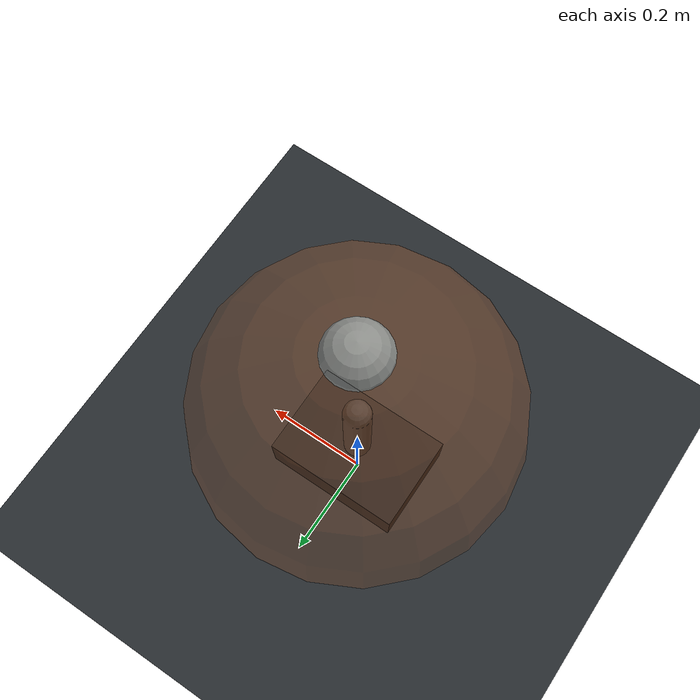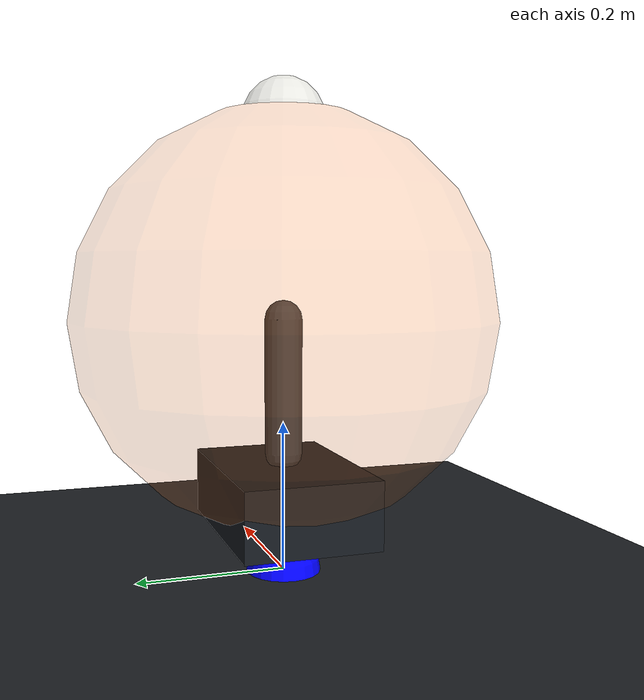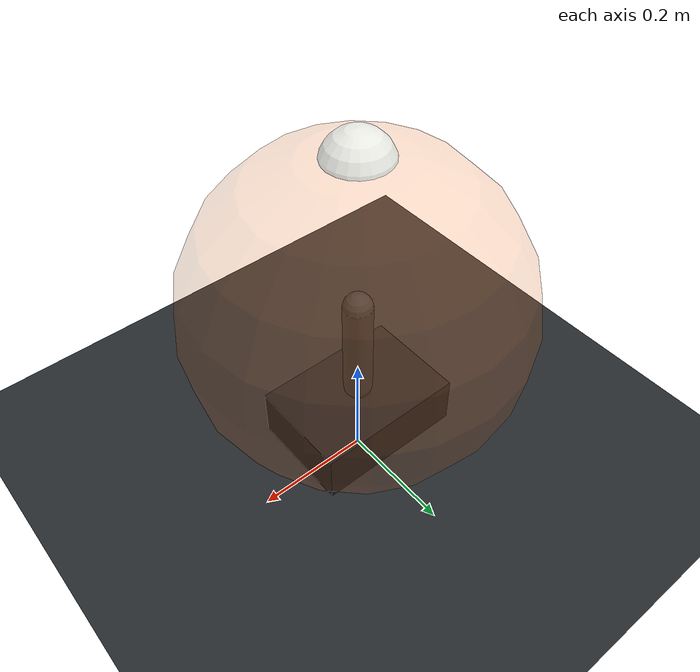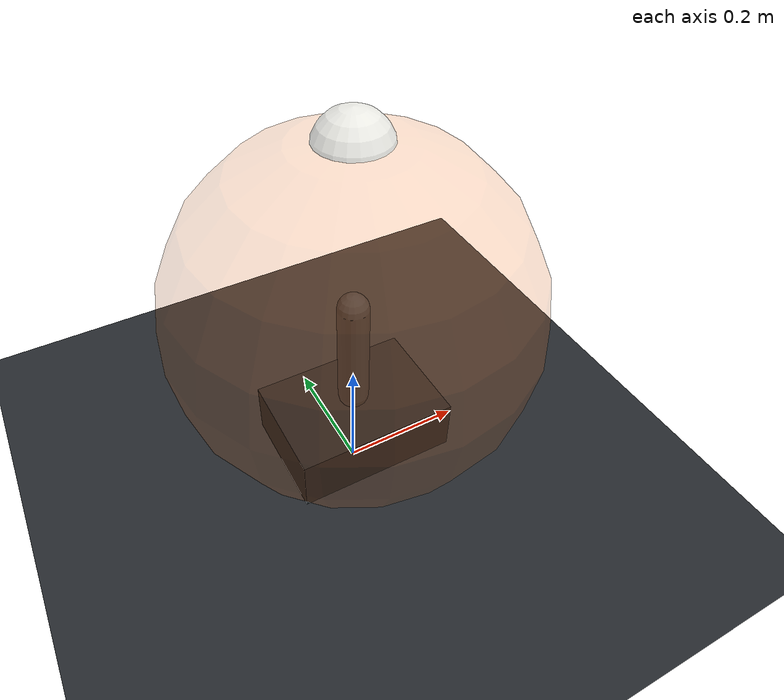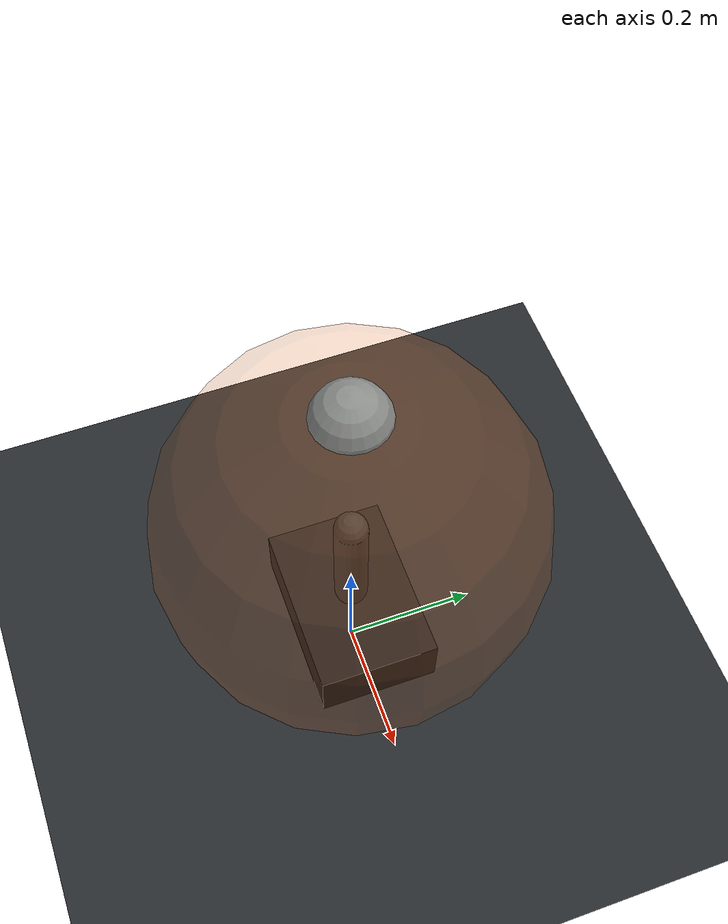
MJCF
<mujoco model="bb8_balance_abstract">
  <compiler angle="radian"/>
  <option timestep="0.002" integrator="RK4" gravity="0 0 -9.81"/>

  <default>
    <joint damping="0.02" armature="0.002"/>
    <geom friction="1.0 0.005 0.0001"/>
  </default>

  <asset>
    <texture name="grid" type="2d" builtin="checker" width="256" height="256"
             rgb1="0.12 0.13 0.14" rgb2="0.18 0.20 0.22"/>
    <material name="grid" texture="grid" texrepeat="6 6" reflectance="0.05"/>
  </asset>

  <worldbody>
    <light name="top" pos="0 0 3"/>
    <geom name="floor" type="plane" pos="0 0 0" size="8 8 0.02" material="grid"/>

    <body name = "center" pos = "0 0 0">
      <geom name = "center_dot" type = "sphere" size = "0.05" mass = "0"
            rgba = "0 0 1 1" conaffinity="2"/>
    </body>

    <body name="shell" pos="0 0 0.34">
      <joint name="shell_x" type="slide" axis="1 0 0" damping="0.35"/>
      <joint name="shell_y" type="slide" axis="0 1 0" damping="0.35"/>
      <geom name="shell_visual" type="sphere" size="0.28" mass="1.1"
            rgba="0.95 0.45 0.12 0.22" contype="0" conaffinity="0"/>

      <body name="pitch_frame" pos="0 0 0">
        <inertial pos="0 0 0" mass="0.001" diaginertia="0.000001 0.000001 0.000001"/>
        <joint name="pitch" type="hinge" axis="0 1 0" damping="0.035"
               limited="true" range="-1.2 1.2"/>
        <body name="roll_frame" pos="0 0 0">
          <inertial pos="0 0 0" mass="0.001" diaginertia="0.000001 0.000001 0.000001"/>
          <joint name="roll" type="hinge" axis="1 0 0" damping="0.035"
                 limited="true" range="-1.2 1.2"/>
          <geom name="chassis_stem" type="capsule" fromto="0 0 0 0 0 -0.18"
                size="0.025" mass="0.25" rgba="0.18 0.2 0.22 1"
                contype="0" conaffinity="0"/>
          <body name="chassis_mass" pos="0 0 -0.24">
            <geom name="battery_block" type="box" size="0.13 0.09 0.045"
                  mass="3.2" rgba="0.08 0.1 0.12 1"
                  contype="0" conaffinity="0"/>
          </body>
          <body name="head_disturbance_mass" pos="0 0 0.26">
            <geom name="head_disturbance" type="sphere" size="0.055"
                  mass="0.25" rgba="0.9 0.9 0.86 0.55" contype="0" conaffinity="0"/>
          </body>
        </body>
      </body>
    </body>
  </worldbody>

  <actuator>
    <motor name="x_force" joint="shell_x" gear="1" ctrllimited="true" ctrlrange="-600 600"/>
    <motor name="y_force" joint="shell_y" gear="1" ctrllimited="true" ctrlrange="-600 600"/>
  </actuator>

  <sensor>
    <jointpos name="roll_pos" joint="roll"/>
    <jointpos name="pitch_pos" joint="pitch"/>
    <jointvel name="roll_vel" joint="roll"/>
    <jointvel name="pitch_vel" joint="pitch"/>
    <jointvel name="shell_x_vel" joint="shell_x"/>
    <jointvel name="shell_y_vel" joint="shell_y"/>
  </sensor>
</mujoco>
